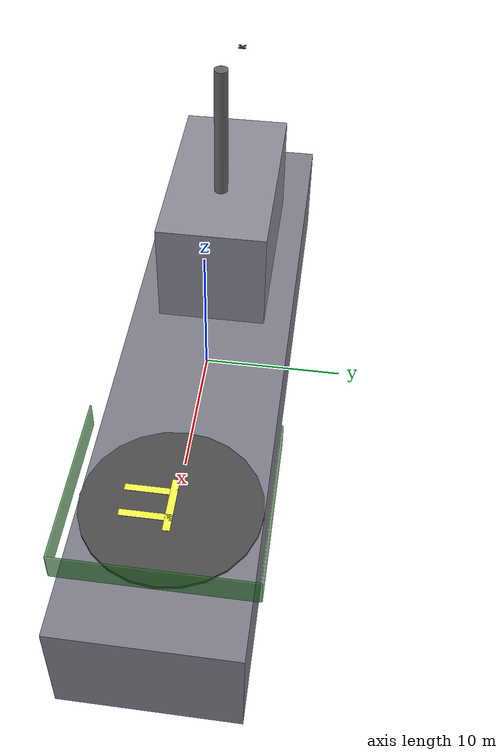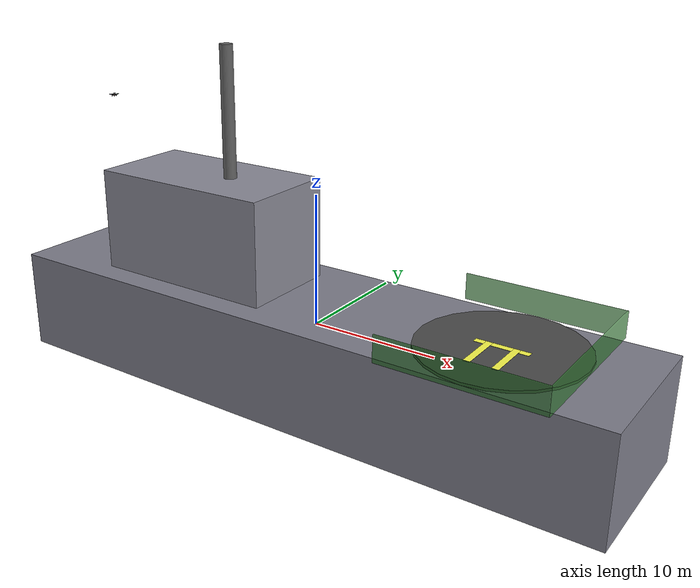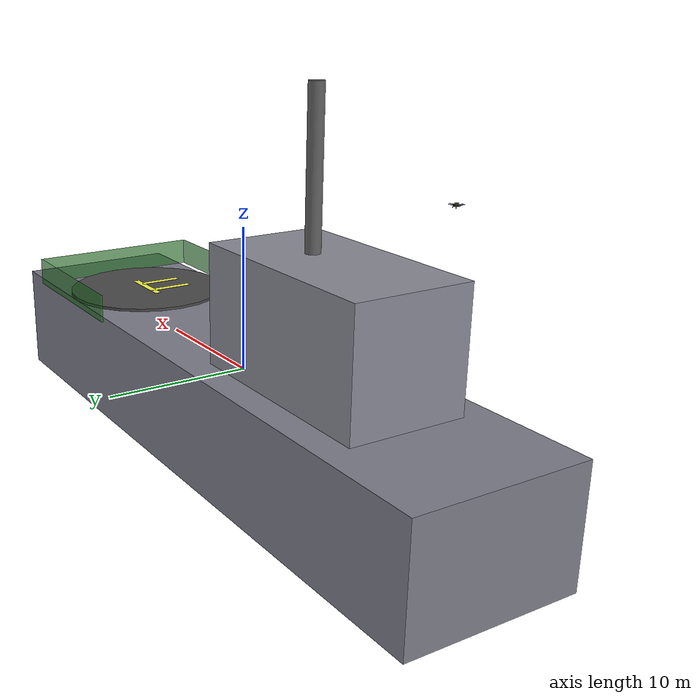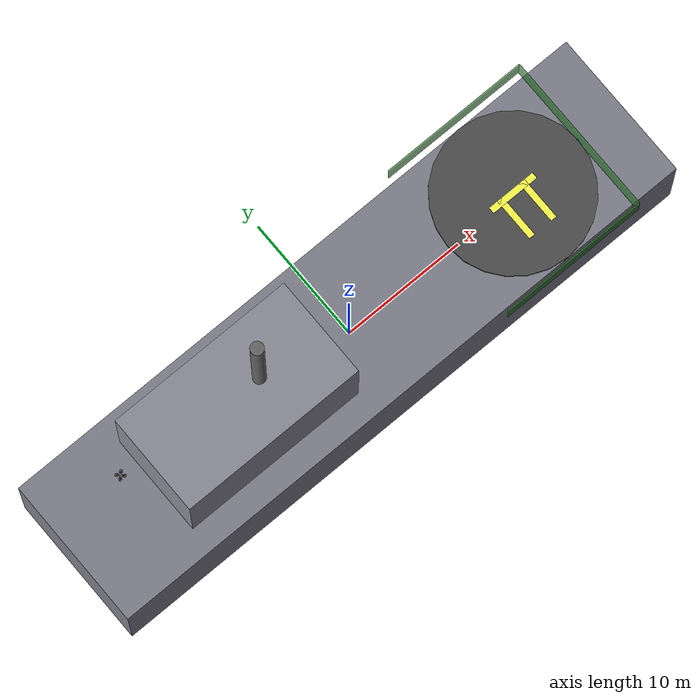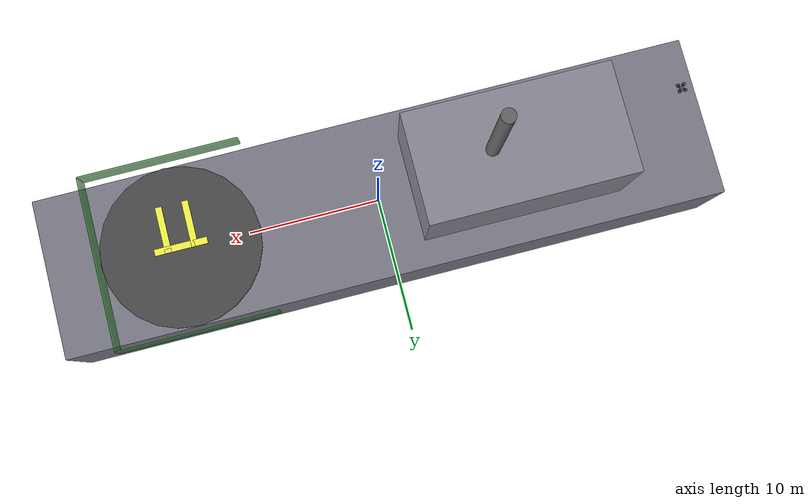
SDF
<sdf version="1.6">
 <world name="ship_landing_world">
  <plugin filename="gz-sim-physics-system" name="gz::sim::systems::Physics"/>
  <plugin filename="gz-sim-scene-broadcaster-system" name="gz::sim::systems::SceneBroadcaster"/>
  <plugin filename="gz-sim-user-commands-system" name="gz::sim::systems::UserCommands"/>
  <plugin filename="gz-sim-sensors-system" name="gz::sim::systems::Sensors">
   <render_engine>ogre</render_engine>
  </plugin>
  <plugin filename="gz-sim-buoyancy-system" name="gz::sim::systems::Buoyancy">
   <uniform_fluid_density>1025</uniform_fluid_density>
  </plugin>
  <physics name="default_physics" type="dart">
   <max_step_size>0.001</max_step_size>
   <real_time_factor>1</real_time_factor>
   <real_time_update_rate>1000</real_time_update_rate>
  </physics>
  <scene>
   <ambient>0.6 0.6 0.7 1</ambient>
   <background>0.4 0.5 0.6 1</background>
   <shadows>true</shadows>
   <sky><clouds><speed>12</speed><direction>1 0.2 0</direction><humidity>0.8</humidity></clouds></sky>
  </scene>
  <light type="directional" name="sun">
   <pose>0 0 100 0 0 0</pose>
   <diffuse>0.8 0.8 0.8 1</diffuse>
   <specular>0.3 0.3 0.3 1</specular>
   <direction>-0.5 0.3 -1</direction>
  </light>
  <model name="ship">
   <link name="hull">
    <inertial><mass>500000</mass><inertia><ixx>1e9</ixx><iyy>5e9</iyy><izz>5e9</izz></inertia></inertial>
    <collision name="hull_collision">
     <pose>0 0 -2 0 0 0</pose>
     <geometry><box><size>50 12 8</size></box></geometry>
    </collision>
    <visual name="hull_visual">
     <pose>0 0 -2 0 0 0</pose>
     <geometry><box><size>50 12 8</size></box></geometry>
     <material>
      <ambient>0.3 0.3 0.35 1</ambient>
      <diffuse>0.5 0.5 0.55 1</diffuse>
      <specular>0.1 0.1 0.1 1</specular>
     </material>
    </visual>
    <visual name="superstructure">
     <pose>-10 0 6 0 0 0</pose>
     <geometry><box><size>15 8 8</size></box></geometry>
     <material><ambient>0.35 0.35 0.4 1</ambient><diffuse>0.55 0.55 0.6 1</diffuse></material>
    </visual>
    <visual name="mast">
     <pose>-8 0 14 0 0 0</pose>
     <geometry><cylinder><radius>0.5</radius><length>12</length></cylinder></geometry>
     <material><ambient>0.3 0.3 0.3 1</ambient><diffuse>0.4 0.4 0.4 1</diffuse></material>
    </visual>
    <visual name="helipad">
     <pose>15 0 2.1 0 0 0</pose>
     <geometry><cylinder><radius>6</radius><length>0.2</length></cylinder></geometry>
     <material><ambient>0.2 0.2 0.2 1</ambient><diffuse>0.3 0.3 0.3 1</diffuse></material>
    </visual>
    <visual name="helipad_marking">
     <pose>15 0 2.21 0 0 0</pose>
     <geometry><box><size>4 0.5 0.01</size></box></geometry>
     <material><ambient>0.9 0.9 0.2 1</ambient><diffuse>1.0 1.0 0.3 1</diffuse></material>
    </visual>
    <visual name="helipad_marking_l">
     <pose>14 -1.5 2.21 0 0 0</pose>
     <geometry><box><size>0.5 3.5 0.01</size></box></geometry>
     <material><ambient>0.9 0.9 0.2 1</ambient><diffuse>1.0 1.0 0.3 1</diffuse></material>
    </visual>
    <visual name="helipad_marking_r">
     <pose>16 -1.5 2.21 0 0 0</pose>
     <geometry><box><size>0.5 3.5 0.01</size></box></geometry>
     <material><ambient>0.9 0.9 0.2 1</ambient><diffuse>1.0 1.0 0.3 1</diffuse></material>
    </visual>
    <visual name="safety_net_port">
     <pose>15 -6.5 3 0 0 0</pose>
     <geometry><box><size>12 0.1 2</size></box></geometry>
     <material><ambient>0.1 0.3 0.1 0.7</ambient><diffuse>0.2 0.5 0.2 0.7</diffuse></material>
    </visual>
    <visual name="safety_net_starboard">
     <pose>15 6.5 3 0 0 0</pose>
     <geometry><box><size>12 0.1 2</size></box></geometry>
     <material><ambient>0.1 0.3 0.1 0.7</ambient><diffuse>0.2 0.5 0.2 0.7</diffuse></material>
    </visual>
    <visual name="safety_net_stern">
     <pose>21 0 3 0 0 0</pose>
     <geometry><box><size>0.1 13 2</size></box></geometry>
     <material><ambient>0.1 0.3 0.1 0.7</ambient><diffuse>0.2 0.5 0.2 0.7</diffuse></material>
    </visual>
    <light name="deck_light_1" type="spot">
     <pose>12 -5 4 0 0.5 0.3</pose>
     <diffuse>0.2 1 0.2 1</diffuse>
     <specular>0.1 0.5 0.1 1</specular>
     <attenuation><range>30</range></attenuation>
     <spot><inner_angle>0.3</inner_angle><outer_angle>0.6</outer_angle><falloff>1</falloff></spot>
    </light>
    <light name="deck_light_2" type="spot">
     <pose>12 5 4 0 0.5 -0.3</pose>
     <diffuse>0.2 1 0.2 1</diffuse>
     <specular>0.1 0.5 0.1 1</specular>
     <attenuation><range>30</range></attenuation>
     <spot><inner_angle>0.3</inner_angle><outer_angle>0.6</outer_angle><falloff>1</falloff></spot>
    </light>
   </link>
   <plugin name="ShipMotionPlugin" filename="libship_motion_plugin.so">
    <sea_state>5</sea_state>
    <ship_speed_kts>12</ship_speed_kts>
    <heave_amplitude>2.5</heave_amplitude>
    <heave_period>8.0</heave_period>
    <roll_amplitude>0.20</roll_amplitude>
    <roll_period>10.0</roll_period>
    <pitch_amplitude>0.08</pitch_amplitude>
    <pitch_period>7.0</pitch_period>
    <deck_link>hull</deck_link>
    <deck_offset>15 0 2.2</deck_offset>
   </plugin>
  </model>
  <include><uri>model://quadrotor</uri><pose>-20 0 15 0 0 0</pose><name>quadrotor</name></include>
 </world>
</sdf>

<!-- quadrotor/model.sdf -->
<sdf version="1.6">
  <model name="quadrotor">
    <pose>0 0 0 0 0 0</pose>

    <link name="base_link">
      <inertial>
        <mass>2.0</mass>
        <inertia>
          <ixx>0.02</ixx>
          <iyy>0.02</iyy>
          <izz>0.04</izz>
          <ixy>0</ixy>
          <ixz>0</ixz>
          <iyz>0</iyz>
        </inertia>
      </inertial>

      <collision name="body_collision">
        <geometry>
          <box>
            <size>0.4 0.4 0.15</size>
          </box>
        </geometry>
      </collision>

      <!-- Main body -->
      <visual name="body_visual">
        <geometry>
          <box>
            <size>0.25 0.25 0.1</size>
          </box>
        </geometry>
        <material>
          <ambient>0.2 0.2 0.2 1</ambient>
          <diffuse>0.3 0.3 0.3 1</diffuse>
        </material>
      </visual>

      <!-- Arms -->
      <visual name="arm_front_right">
        <pose>0.15 -0.15 0 0 0 0.785</pose>
        <geometry>
          <box>
            <size>0.25 0.03 0.02</size>
          </box>
        </geometry>
        <material>
          <ambient>0.1 0.1 0.1 1</ambient>
          <diffuse>0.2 0.2 0.2 1</diffuse>
        </material>
      </visual>

      <visual name="arm_front_left">
        <pose>0.15 0.15 0 0 0 -0.785</pose>
        <geometry>
          <box>
            <size>0.25 0.03 0.02</size>
          </box>
        </geometry>
        <material>
          <ambient>0.1 0.1 0.1 1</ambient>
          <diffuse>0.2 0.2 0.2 1</diffuse>
        </material>
      </visual>

      <visual name="arm_back_right">
        <pose>-0.15 -0.15 0 0 0 -0.785</pose>
        <geometry>
          <box>
            <size>0.25 0.03 0.02</size>
          </box>
        </geometry>
        <material>
          <ambient>0.1 0.1 0.1 1</ambient>
          <diffuse>0.2 0.2 0.2 1</diffuse>
        </material>
      </visual>

      <visual name="arm_back_left">
        <pose>-0.15 0.15 0 0 0 0.785</pose>
        <geometry>
          <box>
            <size>0.25 0.03 0.02</size>
          </box>
        </geometry>
        <material>
          <ambient>0.1 0.1 0.1 1</ambient>
          <diffuse>0.2 0.2 0.2 1</diffuse>
        </material>
      </visual>

      <!-- Motors -->
      <visual name="motor_front_right">
        <pose>0.2 -0.2 0.02 0 0 0</pose>
        <geometry>
          <cylinder>
            <radius>0.03</radius>
            <length>0.04</length>
          </cylinder>
        </geometry>
        <material>
          <ambient>0.8 0.1 0.1 1</ambient>
          <diffuse>0.9 0.2 0.2 1</diffuse>
        </material>
      </visual>

      <visual name="motor_front_left">
        <pose>0.2 0.2 0.02 0 0 0</pose>
        <geometry>
          <cylinder>
            <radius>0.03</radius>
            <length>0.04</length>
          </cylinder>
        </geometry>
        <material>
          <ambient>0.1 0.8 0.1 1</ambient>
          <diffuse>0.2 0.9 0.2 1</diffuse>
        </material>
      </visual>

      <visual name="motor_back_right">
        <pose>-0.2 -0.2 0.02 0 0 0</pose>
        <geometry>
          <cylinder>
            <radius>0.03</radius>
            <length>0.04</length>
          </cylinder>
        </geometry>
        <material>
          <ambient>0.1 0.1 0.8 1</ambient>
          <diffuse>0.2 0.2 0.9 1</diffuse>
        </material>
      </visual>

      <visual name="motor_back_left">
        <pose>-0.2 0.2 0.02 0 0 0</pose>
        <geometry>
          <cylinder>
            <radius>0.03</radius>
            <length>0.04</length>
          </cylinder>
        </geometry>
        <material>
          <ambient>0.8 0.8 0.1 1</ambient>
          <diffuse>0.9 0.9 0.2 1</diffuse>
        </material>
      </visual>

      <!-- Propellers (visual only) -->
      <visual name="prop_front_right">
        <pose>0.2 -0.2 0.05 0 0 0</pose>
        <geometry>
          <cylinder>
            <radius>0.12</radius>
            <length>0.005</length>
          </cylinder>
        </geometry>
        <material>
          <ambient>0.1 0.1 0.1 0.5</ambient>
          <diffuse>0.2 0.2 0.2 0.5</diffuse>
        </material>
      </visual>

      <visual name="prop_front_left">
        <pose>0.2 0.2 0.05 0 0 0</pose>
        <geometry>
          <cylinder>
            <radius>0.12</radius>
            <length>0.005</length>
          </cylinder>
        </geometry>
        <material>
          <ambient>0.1 0.1 0.1 0.5</ambient>
          <diffuse>0.2 0.2 0.2 0.5</diffuse>
        </material>
      </visual>

      <visual name="prop_back_right">
        <pose>-0.2 -0.2 0.05 0 0 0</pose>
        <geometry>
          <cylinder>
            <radius>0.12</radius>
            <length>0.005</length>
          </cylinder>
        </geometry>
        <material>
          <ambient>0.1 0.1 0.1 0.5</ambient>
          <diffuse>0.2 0.2 0.2 0.5</diffuse>
        </material>
      </visual>

      <visual name="prop_back_left">
        <pose>-0.2 0.2 0.05 0 0 0</pose>
        <geometry>
          <cylinder>
            <radius>0.12</radius>
            <length>0.005</length>
          </cylinder>
        </geometry>
        <material>
          <ambient>0.1 0.1 0.1 0.5</ambient>
          <diffuse>0.2 0.2 0.2 0.5</diffuse>
        </material>
      </visual>

      <!-- Landing gear -->
      <visual name="landing_gear_fl">
        <pose>0.12 0.12 -0.08 0 0 0</pose>
        <geometry>
          <cylinder>
            <radius>0.01</radius>
            <length>0.12</length>
          </cylinder>
        </geometry>
        <material>
          <ambient>0.1 0.1 0.1 1</ambient>
          <diffuse>0.2 0.2 0.2 1</diffuse>
        </material>
      </visual>

      <visual name="landing_gear_fr">
        <pose>0.12 -0.12 -0.08 0 0 0</pose>
        <geometry>
          <cylinder>
            <radius>0.01</radius>
            <length>0.12</length>
          </cylinder>
        </geometry>
        <material>
          <ambient>0.1 0.1 0.1 1</ambient>
          <diffuse>0.2 0.2 0.2 1</diffuse>
        </material>
      </visual>

      <visual name="landing_gear_bl">
        <pose>-0.12 0.12 -0.08 0 0 0</pose>
        <geometry>
          <cylinder>
            <radius>0.01</radius>
            <length>0.12</length>
          </cylinder>
        </geometry>
        <material>
          <ambient>0.1 0.1 0.1 1</ambient>
          <diffuse>0.2 0.2 0.2 1</diffuse>
        </material>
      </visual>

      <visual name="landing_gear_br">
        <pose>-0.12 -0.12 -0.08 0 0 0</pose>
        <geometry>
          <cylinder>
            <radius>0.01</radius>
            <length>0.12</length>
          </cylinder>
        </geometry>
        <material>
          <ambient>0.1 0.1 0.1 1</ambient>
          <diffuse>0.2 0.2 0.2 1</diffuse>
        </material>
      </visual>

      <!-- IMU sensor -->
      <sensor name="imu" type="imu">
        <always_on>true</always_on>
        <update_rate>200</update_rate>
        <imu>
          <angular_velocity>
            <x><noise type="gaussian"><mean>0</mean><stddev>0.001</stddev></noise></x>
            <y><noise type="gaussian"><mean>0</mean><stddev>0.001</stddev></noise></y>
            <z><noise type="gaussian"><mean>0</mean><stddev>0.001</stddev></noise></z>
          </angular_velocity>
          <linear_acceleration>
            <x><noise type="gaussian"><mean>0</mean><stddev>0.01</stddev></noise></x>
            <y><noise type="gaussian"><mean>0</mean><stddev>0.01</stddev></noise></y>
            <z><noise type="gaussian"><mean>0</mean><stddev>0.01</stddev></noise></z>
          </linear_acceleration>
        </imu>
      </sensor>

    </link>

    <!-- Note: Controller plugin disabled - use ArduPilot SITL for control -->
    <!-- To enable: build quadrotor_controller_plugin and uncomment below -->

  </model>
</sdf>
